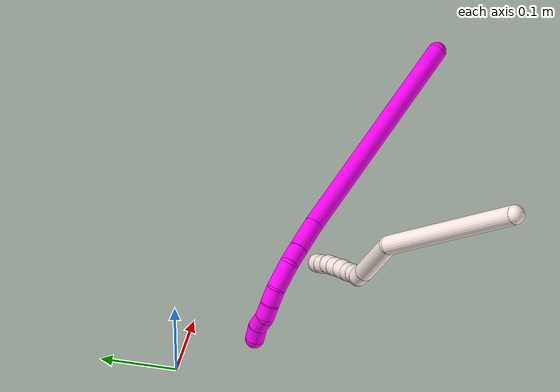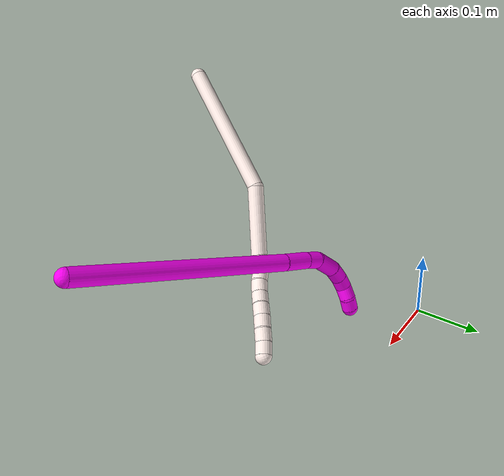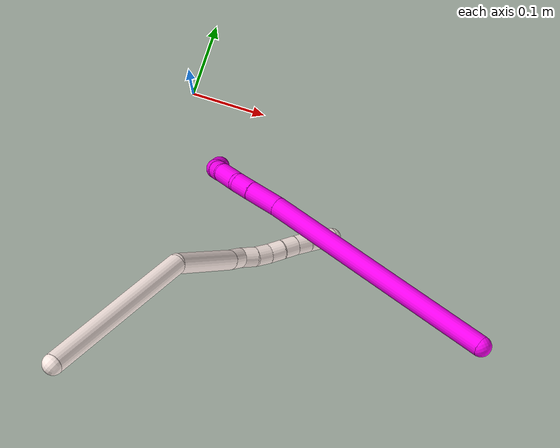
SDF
<sdf version="1.7">
 <world name="default">
  <model name="10">
   <static>0</static>
   <link name="10">
    <collision name="collision-cylinder-e_1_1_4">
     <pose>-0.132178 -0.041349 -0.07534 2.63964 -0.994285 -2.25877</pose>
     <geometry><cylinder><radius>0.0125</radius><length>0.315322</length></cylinder></geometry>
     <surface>
      <friction><ode><mu>1.16</mu><mu2>1.16</mu2><slip1>0</slip1><slip2>0</slip2></ode></friction>
      <contact><ode><kp>1e+06</kp><kd>1</kd><max_vel>0</max_vel><min_depth>0.001</min_depth></ode></contact>
     </surface>
    </collision>
    <visual name="visual-cylinder-e_1_1_4">
     <pose>-0.132178 -0.041349 -0.07534 2.63964 -0.994285 -2.25877</pose>
     <geometry><cylinder><radius>0.0125</radius><length>0.315322</length></cylinder></geometry>
     <material><ambient>1 0 0.964706 1</ambient></material>
    </visual>
    <collision name="collision-cylinder-e_2_4_5">
     <pose>-0.281489 -0.087976 -0.161798 2.69842 -0.94792 -2.31393</pose>
     <geometry><cylinder><radius>0.0125</radius><length>0.04219</length></cylinder></geometry>
     <surface>
      <friction><ode><mu>1.16</mu><mu2>1.16</mu2><slip1>0</slip1><slip2>0</slip2></ode></friction>
      <contact><ode><kp>1e+06</kp><kd>1</kd><max_vel>0</max_vel><min_depth>0.001</min_depth></ode></contact>
     </surface>
    </collision>
    <visual name="visual-cylinder-e_2_4_5">
     <pose>-0.281489 -0.087976 -0.161798 2.69842 -0.94792 -2.31393</pose>
     <geometry><cylinder><radius>0.0125</radius><length>0.04219</length></cylinder></geometry>
     <material><ambient>1 0 0.964706 1</ambient></material>
    </visual>
    <collision name="collision-cylinder-e_3_5_6">
     <pose>-0.308662 -0.095708 -0.178956 2.75561 -0.994786 -2.45058</pose>
     <geometry><cylinder><radius>0.0125</radius><length>0.023943</length></cylinder></geometry>
     <surface>
      <friction><ode><mu>1.16</mu><mu2>1.16</mu2><slip1>0</slip1><slip2>0</slip2></ode></friction>
      <contact><ode><kp>1e+06</kp><kd>1</kd><max_vel>0</max_vel><min_depth>0.001</min_depth></ode></contact>
     </surface>
    </collision>
    <visual name="visual-cylinder-e_3_5_6">
     <pose>-0.308662 -0.095708 -0.178956 2.75561 -0.994786 -2.45058</pose>
     <geometry><cylinder><radius>0.0125</radius><length>0.023943</length></cylinder></geometry>
     <material><ambient>1 0 0.964706 1</ambient></material>
    </visual>
    <collision name="collision-cylinder-e_4_6_7">
     <pose>-0.335556 -0.095376 -0.19114 -2.71566 -1.19009 2.52315</pose>
     <geometry><cylinder><radius>0.0125</radius><length>0.036307</length></cylinder></geometry>
     <surface>
      <friction><ode><mu>1.16</mu><mu2>1.16</mu2><slip1>0</slip1><slip2>0</slip2></ode></friction>
      <contact><ode><kp>1e+06</kp><kd>1</kd><max_vel>0</max_vel><min_depth>0.001</min_depth></ode></contact>
     </surface>
    </collision>
    <visual name="visual-cylinder-e_4_6_7">
     <pose>-0.335556 -0.095376 -0.19114 -2.71566 -1.19009 2.52315</pose>
     <geometry><cylinder><radius>0.0125</radius><length>0.036307</length></cylinder></geometry>
     <material><ambient>1 0 0.964706 1</ambient></material>
    </visual>
    <collision name="collision-cylinder-e_5_7_8">
     <pose>-0.362174 -0.088035 -0.199774 -2.07146 -1.0822 1.58451</pose>
     <geometry><cylinder><radius>0.0125</radius><length>0.022117</length></cylinder></geometry>
     <surface>
      <friction><ode><mu>1.16</mu><mu2>1.16</mu2><slip1>0</slip1><slip2>0</slip2></ode></friction>
      <contact><ode><kp>1e+06</kp><kd>1</kd><max_vel>0</max_vel><min_depth>0.001</min_depth></ode></contact>
     </surface>
    </collision>
    <visual name="visual-cylinder-e_5_7_8">
     <pose>-0.362174 -0.088035 -0.199774 -2.07146 -1.0822 1.58451</pose>
     <geometry><cylinder><radius>0.0125</radius><length>0.022117</length></cylinder></geometry>
     <material><ambient>1 0 0.964706 1</ambient></material>
    </visual>
    <collision name="collision-cylinder-e_6_8_9">
     <pose>-0.38042 -0.078269 -0.20364 -1.82868 -1.00462 1.23876</pose>
     <geometry><cylinder><radius>0.0125</radius><length>0.020101</length></cylinder></geometry>
     <surface>
      <friction><ode><mu>1.16</mu><mu2>1.16</mu2><slip1>0</slip1><slip2>0</slip2></ode></friction>
      <contact><ode><kp>1e+06</kp><kd>1</kd><max_vel>0</max_vel><min_depth>0.001</min_depth></ode></contact>
     </surface>
    </collision>
    <visual name="visual-cylinder-e_6_8_9">
     <pose>-0.38042 -0.078269 -0.20364 -1.82868 -1.00462 1.23876</pose>
     <geometry><cylinder><radius>0.0125</radius><length>0.020101</length></cylinder></geometry>
     <material><ambient>1 0 0.964706 1</ambient></material>
    </visual>
    <collision name="collision-cylinder-e_7_9_10">
     <pose>-0.396612 -0.067275 -0.202323 -1.13494 -0.879651 0.582806</pose>
     <geometry><cylinder><radius>0.0125</radius><length>0.02001</length></cylinder></geometry>
     <surface>
      <friction><ode><mu>1.16</mu><mu2>1.16</mu2><slip1>0</slip1><slip2>0</slip2></ode></friction>
      <contact><ode><kp>1e+06</kp><kd>1</kd><max_vel>0</max_vel><min_depth>0.001</min_depth></ode></contact>
     </surface>
    </collision>
    <visual name="visual-cylinder-e_7_9_10">
     <pose>-0.396612 -0.067275 -0.202323 -1.13494 -0.879651 0.582806</pose>
     <geometry><cylinder><radius>0.0125</radius><length>0.02001</length></cylinder></geometry>
     <material><ambient>1 0 0.964706 1</ambient></material>
    </visual>
    <collision name="collision-cylinder-e_8_10_2">
     <pose>-0.411646 -0.054695 -0.200112 -1.64155 -0.821453 0.874543</pose>
     <geometry><cylinder><radius>0.0125</radius><length>0.020012</length></cylinder></geometry>
     <surface>
      <friction><ode><mu>1.16</mu><mu2>1.16</mu2><slip1>0</slip1><slip2>0</slip2></ode></friction>
      <contact><ode><kp>1e+06</kp><kd>1</kd><max_vel>0</max_vel><min_depth>0.001</min_depth></ode></contact>
     </surface>
    </collision>
    <visual name="visual-cylinder-e_8_10_2">
     <pose>-0.411646 -0.054695 -0.200112 -1.64155 -0.821453 0.874543</pose>
     <geometry><cylinder><radius>0.0125</radius><length>0.020012</length></cylinder></geometry>
     <material><ambient>1 0 0.964706 1</ambient></material>
    </visual>
    <collision name="collision-sphere-2">
     <pose>-0.418972 -0.047897 -0.200594 0 -0 0</pose>
     <geometry><sphere><radius>0.0125</radius></sphere></geometry>
     <surface>
      <friction><ode><mu>1.16</mu><mu2>1.16</mu2><slip1>0</slip1><slip2>0</slip2></ode></friction>
      <contact><ode><kp>1e+06</kp><kd>1</kd><max_vel>0</max_vel><min_depth>0.001</min_depth></ode></contact>
     </surface>
    </collision>
    <visual name="visual-sphere-2">
     <pose>-0.418972 -0.047897 -0.200594 0 -0 0</pose>
     <geometry><sphere><radius>0.0125</radius></sphere></geometry>
     <material><ambient>1 0 0.964706 1</ambient></material>
    </visual>
    <collision name="collision-sphere-10">
     <pose>-0.40432 -0.061494 -0.19963 0 -0 0</pose>
     <geometry><sphere><radius>0.0125</radius></sphere></geometry>
     <surface>
      <friction><ode><mu>1.16</mu><mu2>1.16</mu2><slip1>0</slip1><slip2>0</slip2></ode></friction>
      <contact><ode><kp>1e+06</kp><kd>1</kd><max_vel>0</max_vel><min_depth>0.001</min_depth></ode></contact>
     </surface>
    </collision>
    <visual name="visual-sphere-10">
     <pose>-0.40432 -0.061494 -0.19963 0 -0 0</pose>
     <geometry><sphere><radius>0.0125</radius></sphere></geometry>
     <material><ambient>1 0 0.964706 1</ambient></material>
    </visual>
    <collision name="collision-sphere-9">
     <pose>-0.388903 -0.073056 -0.205015 0 -0 0</pose>
     <geometry><sphere><radius>0.0125</radius></sphere></geometry>
     <surface>
      <friction><ode><mu>1.16</mu><mu2>1.16</mu2><slip1>0</slip1><slip2>0</slip2></ode></friction>
      <contact><ode><kp>1e+06</kp><kd>1</kd><max_vel>0</max_vel><min_depth>0.001</min_depth></ode></contact>
     </surface>
    </collision>
    <visual name="visual-sphere-9">
     <pose>-0.388903 -0.073056 -0.205015 0 -0 0</pose>
     <geometry><sphere><radius>0.0125</radius></sphere></geometry>
     <material><ambient>1 0 0.964706 1</ambient></material>
    </visual>
    <collision name="collision-sphere-4">
     <pose>-0.264356 -0.082699 -0.15068 0 -0 0</pose>
     <geometry><sphere><radius>0.0125</radius></sphere></geometry>
     <surface>
      <friction><ode><mu>1.16</mu><mu2>1.16</mu2><slip1>0</slip1><slip2>0</slip2></ode></friction>
      <contact><ode><kp>1e+06</kp><kd>1</kd><max_vel>0</max_vel><min_depth>0.001</min_depth></ode></contact>
     </surface>
    </collision>
    <visual name="visual-sphere-4">
     <pose>-0.264356 -0.082699 -0.15068 0 -0 0</pose>
     <geometry><sphere><radius>0.0125</radius></sphere></geometry>
     <material><ambient>1 0 0.964706 1</ambient></material>
    </visual>
    <collision name="collision-sphere-1">
     <geometry><sphere><radius>0.0125</radius></sphere></geometry>
     <surface>
      <friction><ode><mu>1.16</mu><mu2>1.16</mu2><slip1>0</slip1><slip2>0</slip2></ode></friction>
      <contact><ode><kp>1e+06</kp><kd>1</kd><max_vel>0</max_vel><min_depth>0.001</min_depth></ode></contact>
     </surface>
    </collision>
    <visual name="visual-sphere-1">
     <geometry><sphere><radius>0.0125</radius></sphere></geometry>
     <material><ambient>1 0 0.964706 1</ambient></material>
    </visual>
    <collision name="collision-sphere-8">
     <pose>-0.371938 -0.083482 -0.202265 0 -0 0</pose>
     <geometry><sphere><radius>0.0125</radius></sphere></geometry>
     <surface>
      <friction><ode><mu>1.16</mu><mu2>1.16</mu2><slip1>0</slip1><slip2>0</slip2></ode></friction>
      <contact><ode><kp>1e+06</kp><kd>1</kd><max_vel>0</max_vel><min_depth>0.001</min_depth></ode></contact>
     </surface>
    </collision>
    <visual name="visual-sphere-8">
     <pose>-0.371938 -0.083482 -0.202265 0 -0 0</pose>
     <geometry><sphere><radius>0.0125</radius></sphere></geometry>
     <material><ambient>1 0 0.964706 1</ambient></material>
    </visual>
    <collision name="collision-sphere-5">
     <pose>-0.298623 -0.093253 -0.172915 0 -0 0</pose>
     <geometry><sphere><radius>0.0125</radius></sphere></geometry>
     <surface>
      <friction><ode><mu>1.16</mu><mu2>1.16</mu2><slip1>0</slip1><slip2>0</slip2></ode></friction>
      <contact><ode><kp>1e+06</kp><kd>1</kd><max_vel>0</max_vel><min_depth>0.001</min_depth></ode></contact>
     </surface>
    </collision>
    <visual name="visual-sphere-5">
     <pose>-0.298623 -0.093253 -0.172915 0 -0 0</pose>
     <geometry><sphere><radius>0.0125</radius></sphere></geometry>
     <material><ambient>1 0 0.964706 1</ambient></material>
    </visual>
    <collision name="collision-sphere-6">
     <pose>-0.318702 -0.098163 -0.184997 0 -0 0</pose>
     <geometry><sphere><radius>0.0125</radius></sphere></geometry>
     <surface>
      <friction><ode><mu>1.16</mu><mu2>1.16</mu2><slip1>0</slip1><slip2>0</slip2></ode></friction>
      <contact><ode><kp>1e+06</kp><kd>1</kd><max_vel>0</max_vel><min_depth>0.001</min_depth></ode></contact>
     </surface>
    </collision>
    <visual name="visual-sphere-6">
     <pose>-0.318702 -0.098163 -0.184997 0 -0 0</pose>
     <geometry><sphere><radius>0.0125</radius></sphere></geometry>
     <material><ambient>1 0 0.964706 1</ambient></material>
    </visual>
    <collision name="collision-sphere-7">
     <pose>-0.352409 -0.092589 -0.197282 0 -0 0</pose>
     <geometry><sphere><radius>0.0125</radius></sphere></geometry>
     <surface>
      <friction><ode><mu>1.16</mu><mu2>1.16</mu2><slip1>0</slip1><slip2>0</slip2></ode></friction>
      <contact><ode><kp>1e+06</kp><kd>1</kd><max_vel>0</max_vel><min_depth>0.001</min_depth></ode></contact>
     </surface>
    </collision>
    <visual name="visual-sphere-7">
     <pose>-0.352409 -0.092589 -0.197282 0 -0 0</pose>
     <geometry><sphere><radius>0.0125</radius></sphere></geometry>
     <material><ambient>1 0 0.964706 1</ambient></material>
    </visual>
    <inertial>
     <pose>-0.209917 -0.056931 -0.116743 0 -0 0</pose>
     <mass>0.5</mass>
     <inertia>
      <ixx>-0.002051</ixx>
      <ixy>0</ixy>
      <ixz>0</ixz>
      <iyy>0.001188</iyy>
      <iyz>0</iyz>
      <izz>0.00289</izz>
     </inertia>
    </inertial>
   </link>
   <pose>0.446166 -0.254131 0.229179 -1.44915 -0.599808 -0.93114</pose>
  </model>
  <model name="11">
   <static>0</static>
   <link name="11">
    <collision name="collision-cylinder-e_1_1_4">
     <pose>0.100546 -0.053152 -0.002524 1.61824 1.08404 1.12645</pose>
     <geometry><cylinder><radius>0.0125</radius><length>0.227518</length></cylinder></geometry>
     <surface>
      <friction><ode><mu>1.16</mu><mu2>1.16</mu2><slip1>0</slip1><slip2>0</slip2></ode></friction>
      <contact><ode><kp>1e+06</kp><kd>1</kd><max_vel>0</max_vel><min_depth>0.001</min_depth></ode></contact>
     </surface>
    </collision>
    <visual name="visual-cylinder-e_1_1_4">
     <pose>0.100546 -0.053152 -0.002524 1.61824 1.08404 1.12645</pose>
     <geometry><cylinder><radius>0.0125</radius><length>0.227518</length></cylinder></geometry>
     <material><ambient>1 0.933333 0.909804 1</ambient></material>
    </visual>
    <collision name="collision-cylinder-e_2_4_5">
     <pose>0.251909 -0.113357 -0.022916 2.76568 1.20938 2.60442</pose>
     <geometry><cylinder><radius>0.0125</radius><length>0.108652</length></cylinder></geometry>
     <surface>
      <friction><ode><mu>1.16</mu><mu2>1.16</mu2><slip1>0</slip1><slip2>0</slip2></ode></friction>
      <contact><ode><kp>1e+06</kp><kd>1</kd><max_vel>0</max_vel><min_depth>0.001</min_depth></ode></contact>
     </surface>
    </collision>
    <visual name="visual-cylinder-e_2_4_5">
     <pose>0.251909 -0.113357 -0.022916 2.76568 1.20938 2.60442</pose>
     <geometry><cylinder><radius>0.0125</radius><length>0.108652</length></cylinder></geometry>
     <material><ambient>1 0.933333 0.909804 1</ambient></material>
    </visual>
    <collision name="collision-cylinder-e_3_5_6">
     <pose>0.313504 -0.122574 -0.043931 2.53911 1.23023 2.31303</pose>
     <geometry><cylinder><radius>0.0125</radius><length>0.022871</length></cylinder></geometry>
     <surface>
      <friction><ode><mu>1.16</mu><mu2>1.16</mu2><slip1>0</slip1><slip2>0</slip2></ode></friction>
      <contact><ode><kp>1e+06</kp><kd>1</kd><max_vel>0</max_vel><min_depth>0.001</min_depth></ode></contact>
     </surface>
    </collision>
    <visual name="visual-cylinder-e_3_5_6">
     <pose>0.313504 -0.122574 -0.043931 2.53911 1.23023 2.31303</pose>
     <geometry><cylinder><radius>0.0125</radius><length>0.022871</length></cylinder></geometry>
     <material><ambient>1 0.933333 0.909804 1</ambient></material>
    </visual>
    <collision name="collision-cylinder-e_4_6_7">
     <pose>0.331147 -0.129843 -0.053091 2.43771 0.716127 1.58959</pose>
     <geometry><cylinder><radius>0.0125</radius><length>0.020911</length></cylinder></geometry>
     <surface>
      <friction><ode><mu>1.16</mu><mu2>1.16</mu2><slip1>0</slip1><slip2>0</slip2></ode></friction>
      <contact><ode><kp>1e+06</kp><kd>1</kd><max_vel>0</max_vel><min_depth>0.001</min_depth></ode></contact>
     </surface>
    </collision>
    <visual name="visual-cylinder-e_4_6_7">
     <pose>0.331147 -0.129843 -0.053091 2.43771 0.716127 1.58959</pose>
     <geometry><cylinder><radius>0.0125</radius><length>0.020911</length></cylinder></geometry>
     <material><ambient>1 0.933333 0.909804 1</ambient></material>
    </visual>
    <collision name="collision-cylinder-e_5_7_8">
     <pose>0.345489 -0.140023 -0.063428 2.27637 0.842663 1.54087</pose>
     <geometry><cylinder><radius>0.0125</radius><length>0.020038</length></cylinder></geometry>
     <surface>
      <friction><ode><mu>1.16</mu><mu2>1.16</mu2><slip1>0</slip1><slip2>0</slip2></ode></friction>
      <contact><ode><kp>1e+06</kp><kd>1</kd><max_vel>0</max_vel><min_depth>0.001</min_depth></ode></contact>
     </surface>
    </collision>
    <visual name="visual-cylinder-e_5_7_8">
     <pose>0.345489 -0.140023 -0.063428 2.27637 0.842663 1.54087</pose>
     <geometry><cylinder><radius>0.0125</radius><length>0.020038</length></cylinder></geometry>
     <material><ambient>1 0.933333 0.909804 1</ambient></material>
    </visual>
    <collision name="collision-cylinder-e_6_8_9">
     <pose>0.359715 -0.151279 -0.071787 2.14933 0.740574 1.2443</pose>
     <geometry><cylinder><radius>0.0125</radius><length>0.020001</length></cylinder></geometry>
     <surface>
      <friction><ode><mu>1.16</mu><mu2>1.16</mu2><slip1>0</slip1><slip2>0</slip2></ode></friction>
      <contact><ode><kp>1e+06</kp><kd>1</kd><max_vel>0</max_vel><min_depth>0.001</min_depth></ode></contact>
     </surface>
    </collision>
    <visual name="visual-cylinder-e_6_8_9">
     <pose>0.359715 -0.151279 -0.071787 2.14933 0.740574 1.2443</pose>
     <geometry><cylinder><radius>0.0125</radius><length>0.020001</length></cylinder></geometry>
     <material><ambient>1 0.933333 0.909804 1</ambient></material>
    </visual>
    <collision name="collision-cylinder-e_7_9_10">
     <pose>0.373823 -0.163055 -0.079638 2.16911 0.826966 1.38569</pose>
     <geometry><cylinder><radius>0.0125</radius><length>0.020004</length></cylinder></geometry>
     <surface>
      <friction><ode><mu>1.16</mu><mu2>1.16</mu2><slip1>0</slip1><slip2>0</slip2></ode></friction>
      <contact><ode><kp>1e+06</kp><kd>1</kd><max_vel>0</max_vel><min_depth>0.001</min_depth></ode></contact>
     </surface>
    </collision>
    <visual name="visual-cylinder-e_7_9_10">
     <pose>0.373823 -0.163055 -0.079638 2.16911 0.826966 1.38569</pose>
     <geometry><cylinder><radius>0.0125</radius><length>0.020004</length></cylinder></geometry>
     <material><ambient>1 0.933333 0.909804 1</ambient></material>
    </visual>
    <collision name="collision-cylinder-e_8_10_11">
     <pose>0.388408 -0.174114 -0.087692 2.23073 0.807349 1.43438</pose>
     <geometry><cylinder><radius>0.0125</radius><length>0.020003</length></cylinder></geometry>
     <surface>
      <friction><ode><mu>1.16</mu><mu2>1.16</mu2><slip1>0</slip1><slip2>0</slip2></ode></friction>
      <contact><ode><kp>1e+06</kp><kd>1</kd><max_vel>0</max_vel><min_depth>0.001</min_depth></ode></contact>
     </surface>
    </collision>
    <visual name="visual-cylinder-e_8_10_11">
     <pose>0.388408 -0.174114 -0.087692 2.23073 0.807349 1.43438</pose>
     <geometry><cylinder><radius>0.0125</radius><length>0.020003</length></cylinder></geometry>
     <material><ambient>1 0.933333 0.909804 1</ambient></material>
    </visual>
    <collision name="collision-cylinder-e_9_11_12">
     <pose>0.403775 -0.183923 -0.095785 2.29616 0.951145 1.70566</pose>
     <geometry><cylinder><radius>0.0125</radius><length>0.020001</length></cylinder></geometry>
     <surface>
      <friction><ode><mu>1.16</mu><mu2>1.16</mu2><slip1>0</slip1><slip2>0</slip2></ode></friction>
      <contact><ode><kp>1e+06</kp><kd>1</kd><max_vel>0</max_vel><min_depth>0.001</min_depth></ode></contact>
     </surface>
    </collision>
    <visual name="visual-cylinder-e_9_11_12">
     <pose>0.403775 -0.183923 -0.095785 2.29616 0.951145 1.70566</pose>
     <geometry><cylinder><radius>0.0125</radius><length>0.020001</length></cylinder></geometry>
     <material><ambient>1 0.933333 0.909804 1</ambient></material>
    </visual>
    <collision name="collision-cylinder-e_10_12_2">
     <pose>0.419548 -0.192756 -0.104288 2.37398 0.868179 1.70834</pose>
     <geometry><cylinder><radius>0.0125</radius><length>0.020001</length></cylinder></geometry>
     <surface>
      <friction><ode><mu>1.16</mu><mu2>1.16</mu2><slip1>0</slip1><slip2>0</slip2></ode></friction>
      <contact><ode><kp>1e+06</kp><kd>1</kd><max_vel>0</max_vel><min_depth>0.001</min_depth></ode></contact>
     </surface>
    </collision>
    <visual name="visual-cylinder-e_10_12_2">
     <pose>0.419548 -0.192756 -0.104288 2.37398 0.868179 1.70834</pose>
     <geometry><cylinder><radius>0.0125</radius><length>0.020001</length></cylinder></geometry>
     <material><ambient>1 0.933333 0.909804 1</ambient></material>
    </visual>
    <collision name="collision-sphere-2">
     <pose>0.42718 -0.197244 -0.108938 0 -0 0</pose>
     <geometry><sphere><radius>0.0125</radius></sphere></geometry>
     <surface>
      <friction><ode><mu>1.16</mu><mu2>1.16</mu2><slip1>0</slip1><slip2>0</slip2></ode></friction>
      <contact><ode><kp>1e+06</kp><kd>1</kd><max_vel>0</max_vel><min_depth>0.001</min_depth></ode></contact>
     </surface>
    </collision>
    <visual name="visual-sphere-2">
     <pose>0.42718 -0.197244 -0.108938 0 -0 0</pose>
     <geometry><sphere><radius>0.0125</radius></sphere></geometry>
     <material><ambient>1 0.933333 0.909804 1</ambient></material>
    </visual>
    <collision name="collision-sphere-12">
     <pose>0.411916 -0.188269 -0.099637 0 -0 0</pose>
     <geometry><sphere><radius>0.0125</radius></sphere></geometry>
     <surface>
      <friction><ode><mu>1.16</mu><mu2>1.16</mu2><slip1>0</slip1><slip2>0</slip2></ode></friction>
      <contact><ode><kp>1e+06</kp><kd>1</kd><max_vel>0</max_vel><min_depth>0.001</min_depth></ode></contact>
     </surface>
    </collision>
    <visual name="visual-sphere-12">
     <pose>0.411916 -0.188269 -0.099637 0 -0 0</pose>
     <geometry><sphere><radius>0.0125</radius></sphere></geometry>
     <material><ambient>1 0.933333 0.909804 1</ambient></material>
    </visual>
    <collision name="collision-sphere-11">
     <pose>0.395634 -0.179577 -0.091932 0 -0 0</pose>
     <geometry><sphere><radius>0.0125</radius></sphere></geometry>
     <surface>
      <friction><ode><mu>1.16</mu><mu2>1.16</mu2><slip1>0</slip1><slip2>0</slip2></ode></friction>
      <contact><ode><kp>1e+06</kp><kd>1</kd><max_vel>0</max_vel><min_depth>0.001</min_depth></ode></contact>
     </surface>
    </collision>
    <visual name="visual-sphere-11">
     <pose>0.395634 -0.179577 -0.091932 0 -0 0</pose>
     <geometry><sphere><radius>0.0125</radius></sphere></geometry>
     <material><ambient>1 0.933333 0.909804 1</ambient></material>
    </visual>
    <collision name="collision-sphere-10">
     <pose>0.381183 -0.168651 -0.083453 0 -0 0</pose>
     <geometry><sphere><radius>0.0125</radius></sphere></geometry>
     <surface>
      <friction><ode><mu>1.16</mu><mu2>1.16</mu2><slip1>0</slip1><slip2>0</slip2></ode></friction>
      <contact><ode><kp>1e+06</kp><kd>1</kd><max_vel>0</max_vel><min_depth>0.001</min_depth></ode></contact>
     </surface>
    </collision>
    <visual name="visual-sphere-10">
     <pose>0.381183 -0.168651 -0.083453 0 -0 0</pose>
     <geometry><sphere><radius>0.0125</radius></sphere></geometry>
     <material><ambient>1 0.933333 0.909804 1</ambient></material>
    </visual>
    <collision name="collision-sphere-9">
     <pose>0.366462 -0.157459 -0.075824 0 -0 0</pose>
     <geometry><sphere><radius>0.0125</radius></sphere></geometry>
     <surface>
      <friction><ode><mu>1.16</mu><mu2>1.16</mu2><slip1>0</slip1><slip2>0</slip2></ode></friction>
      <contact><ode><kp>1e+06</kp><kd>1</kd><max_vel>0</max_vel><min_depth>0.001</min_depth></ode></contact>
     </surface>
    </collision>
    <visual name="visual-sphere-9">
     <pose>0.366462 -0.157459 -0.075824 0 -0 0</pose>
     <geometry><sphere><radius>0.0125</radius></sphere></geometry>
     <material><ambient>1 0.933333 0.909804 1</ambient></material>
    </visual>
    <collision name="collision-sphere-4">
     <pose>0.201093 -0.106305 -0.005048 0 -0 0</pose>
     <geometry><sphere><radius>0.0125</radius></sphere></geometry>
     <surface>
      <friction><ode><mu>1.16</mu><mu2>1.16</mu2><slip1>0</slip1><slip2>0</slip2></ode></friction>
      <contact><ode><kp>1e+06</kp><kd>1</kd><max_vel>0</max_vel><min_depth>0.001</min_depth></ode></contact>
     </surface>
    </collision>
    <visual name="visual-sphere-4">
     <pose>0.201093 -0.106305 -0.005048 0 -0 0</pose>
     <geometry><sphere><radius>0.0125</radius></sphere></geometry>
     <material><ambient>1 0.933333 0.909804 1</ambient></material>
    </visual>
    <collision name="collision-sphere-1">
     <geometry><sphere><radius>0.0125</radius></sphere></geometry>
     <surface>
      <friction><ode><mu>1.16</mu><mu2>1.16</mu2><slip1>0</slip1><slip2>0</slip2></ode></friction>
      <contact><ode><kp>1e+06</kp><kd>1</kd><max_vel>0</max_vel><min_depth>0.001</min_depth></ode></contact>
     </surface>
    </collision>
    <visual name="visual-sphere-1">
     <geometry><sphere><radius>0.0125</radius></sphere></geometry>
     <material><ambient>1 0.933333 0.909804 1</ambient></material>
    </visual>
    <collision name="collision-sphere-8">
     <pose>0.352967 -0.145099 -0.067751 0 -0 0</pose>
     <geometry><sphere><radius>0.0125</radius></sphere></geometry>
     <surface>
      <friction><ode><mu>1.16</mu><mu2>1.16</mu2><slip1>0</slip1><slip2>0</slip2></ode></friction>
      <contact><ode><kp>1e+06</kp><kd>1</kd><max_vel>0</max_vel><min_depth>0.001</min_depth></ode></contact>
     </surface>
    </collision>
    <visual name="visual-sphere-8">
     <pose>0.352967 -0.145099 -0.067751 0 -0 0</pose>
     <geometry><sphere><radius>0.0125</radius></sphere></geometry>
     <material><ambient>1 0.933333 0.909804 1</ambient></material>
    </visual>
    <collision name="collision-sphere-5">
     <pose>0.302725 -0.120409 -0.040784 0 -0 0</pose>
     <geometry><sphere><radius>0.0125</radius></sphere></geometry>
     <surface>
      <friction><ode><mu>1.16</mu><mu2>1.16</mu2><slip1>0</slip1><slip2>0</slip2></ode></friction>
      <contact><ode><kp>1e+06</kp><kd>1</kd><max_vel>0</max_vel><min_depth>0.001</min_depth></ode></contact>
     </surface>
    </collision>
    <visual name="visual-sphere-5">
     <pose>0.302725 -0.120409 -0.040784 0 -0 0</pose>
     <geometry><sphere><radius>0.0125</radius></sphere></geometry>
     <material><ambient>1 0.933333 0.909804 1</ambient></material>
    </visual>
    <collision name="collision-sphere-6">
     <pose>0.324283 -0.124739 -0.047079 0 -0 0</pose>
     <geometry><sphere><radius>0.0125</radius></sphere></geometry>
     <surface>
      <friction><ode><mu>1.16</mu><mu2>1.16</mu2><slip1>0</slip1><slip2>0</slip2></ode></friction>
      <contact><ode><kp>1e+06</kp><kd>1</kd><max_vel>0</max_vel><min_depth>0.001</min_depth></ode></contact>
     </surface>
    </collision>
    <visual name="visual-sphere-6">
     <pose>0.324283 -0.124739 -0.047079 0 -0 0</pose>
     <geometry><sphere><radius>0.0125</radius></sphere></geometry>
     <material><ambient>1 0.933333 0.909804 1</ambient></material>
    </visual>
    <collision name="collision-sphere-7">
     <pose>0.338011 -0.134948 -0.059104 0 -0 0</pose>
     <geometry><sphere><radius>0.0125</radius></sphere></geometry>
     <surface>
      <friction><ode><mu>1.16</mu><mu2>1.16</mu2><slip1>0</slip1><slip2>0</slip2></ode></friction>
      <contact><ode><kp>1e+06</kp><kd>1</kd><max_vel>0</max_vel><min_depth>0.001</min_depth></ode></contact>
     </surface>
    </collision>
    <visual name="visual-sphere-7">
     <pose>0.338011 -0.134948 -0.059104 0 -0 0</pose>
     <geometry><sphere><radius>0.0125</radius></sphere></geometry>
     <material><ambient>1 0.933333 0.909804 1</ambient></material>
    </visual>
    <inertial>
     <pose>0.220347 -0.100076 -0.030469 0 -0 0</pose>
     <mass>0.5</mass>
     <inertia>
      <ixx>0.000644</ixx>
      <ixy>0</ixy>
      <ixz>0</ixz>
      <iyy>0.001315</iyy>
      <iyz>0</iyz>
      <izz>-0.000514</izz>
     </inertia>
    </inertial>
   </link>
   <pose>0.002674 -0.430291 0.317163 -1.33474 1.09426 1.31606</pose>
  </model>
 </world>
</sdf>
